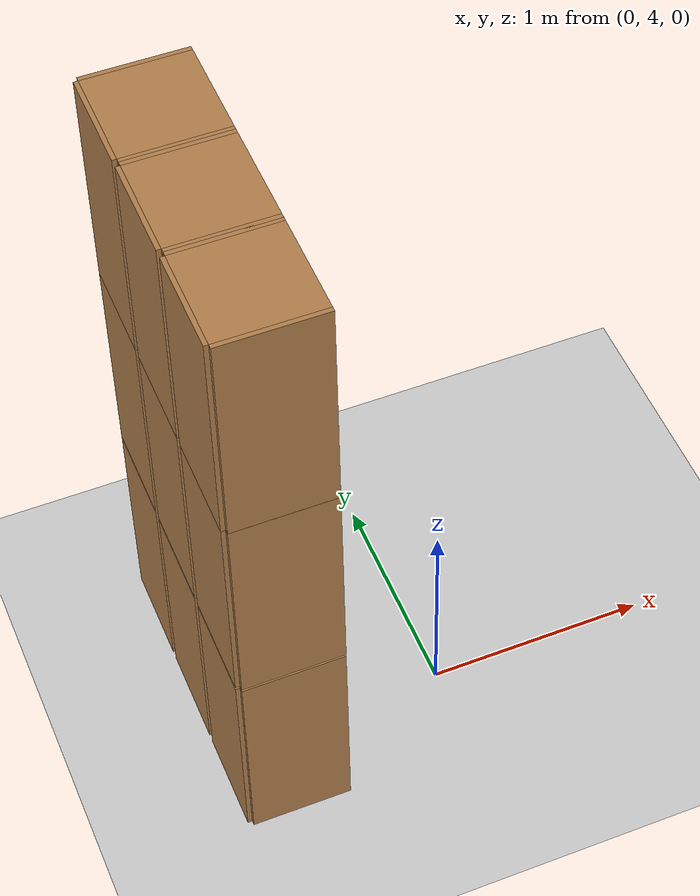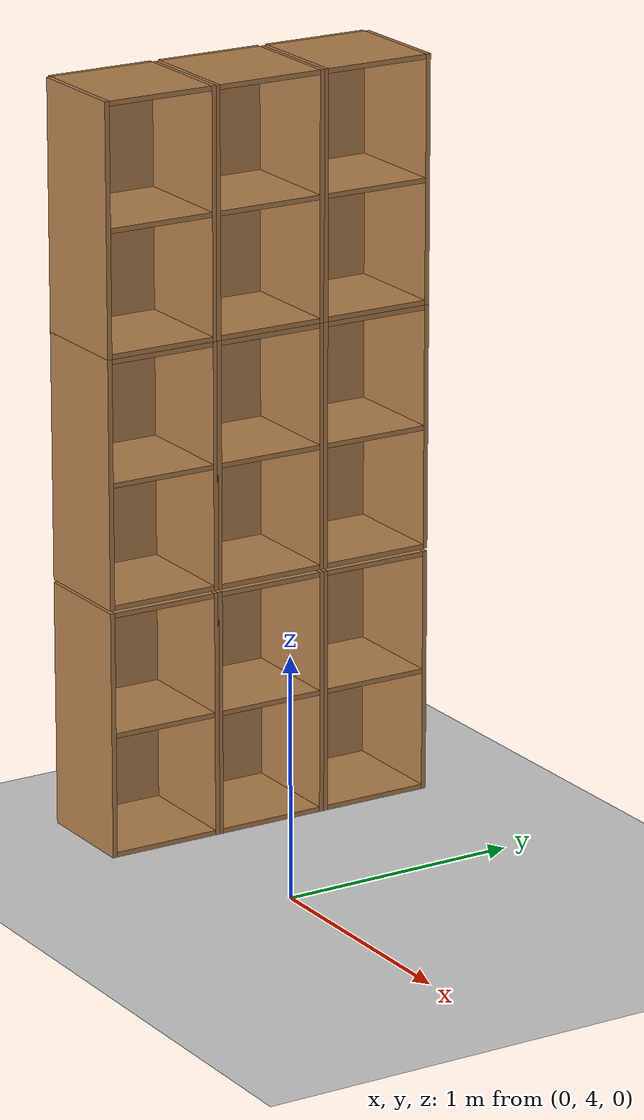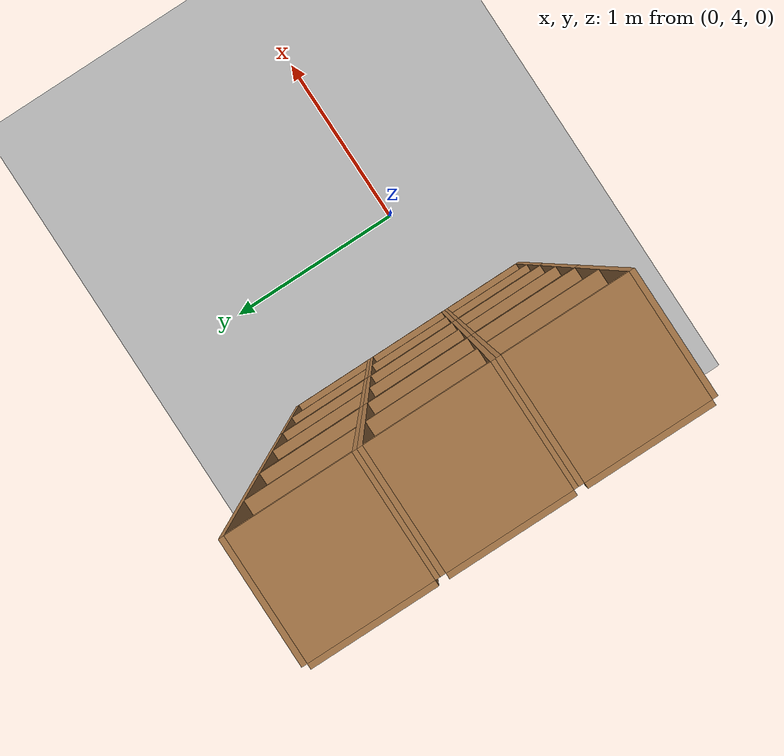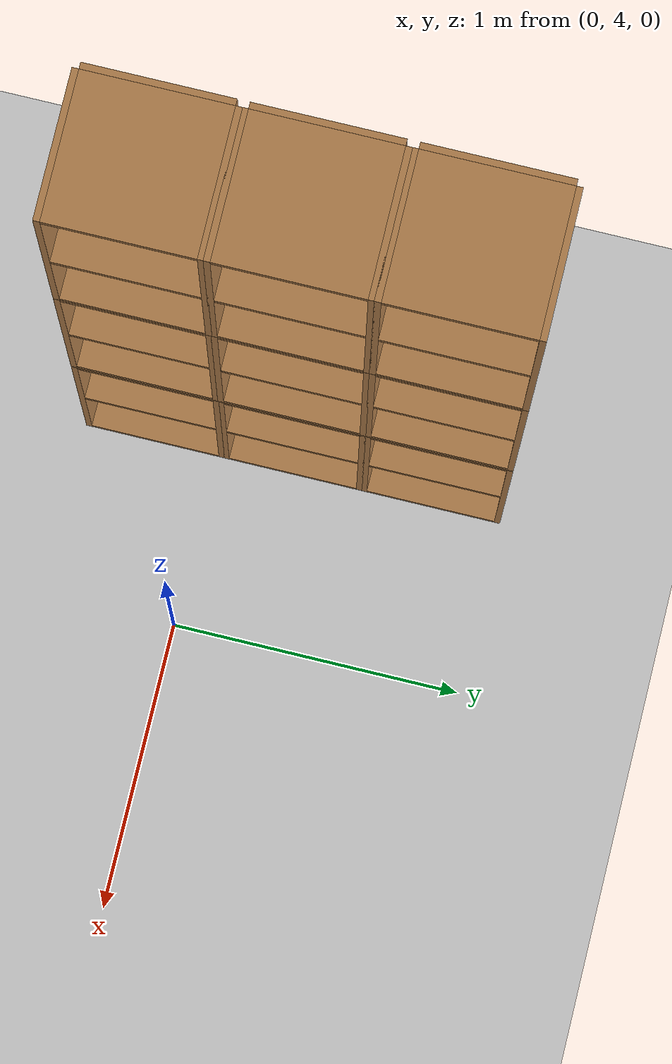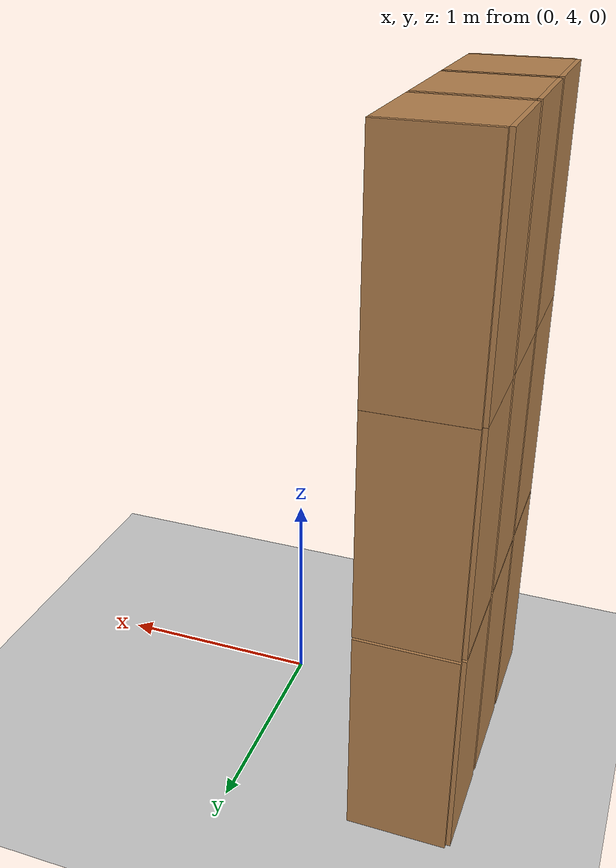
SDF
<sdf version="1.6">
 <world name="default">
  <model name="ground_plane">
   <static>1</static>
   <link name="link">
    <collision name="collision">
     <geometry><plane><normal>0 0 1</normal><size>100 100</size></plane></geometry>
     <surface>
      <contact><collide_bitmask>65535</collide_bitmask></contact>
      <friction><ode><mu>100</mu><mu2>50</mu2></ode></friction>
     </surface>
    </collision>
    <visual name="visual">
     <cast_shadows>0</cast_shadows>
     <geometry><plane><normal>0 0 1</normal><size>100 100</size></plane></geometry>
     <material>
      <script><uri>file://media/materials/scripts/gazebo.material</uri><name>Gazebo/Grey</name></script>
     </material>
    </visual>
   </link>
  </model>
  <model name="Locker18_clone_4_clone_2_clone_1_clone_clone_clone_2_clone_clone_0">
   <model name="Locker18">
    <model name="Locker3">
     <model name="cabinet">
      <static>1</static>
      <link name="cabinet_bottom_plate">
       <inertial>
        <pose>0 0 -1 0 -0 0</pose>
        <inertia><ixx>2.05</ixx><ixy>0</ixy><ixz>0</ixz><iyy>2.05</iyy><iyz>0</iyz><izz>2.05</izz></inertia>
        <mass>25</mass>
       </inertial>
       <collision name="cabinet_bottom_plate_geom">
        <pose>0 0 0.01 0 -0 0</pose>
        <geometry><box><size>0.45 0.45 0.02</size></box></geometry>
       </collision>
       <visual name="cabinet_bottom_plate_geom_visual">
        <pose>0 0 0.01 0 -0 0</pose>
        <geometry><box><size>0.45 0.45 0.02</size></box></geometry>
        <material>
         <script><uri>file://media/materials/scripts/gazebo.material</uri><name>Gazebo/Wood</name></script>
        </material>
       </visual>
       <collision name="cabinet_bottom_plate_geom_cabinet_back_plate">
        <pose>0.235 0 0.51 0 -0 0</pose>
        <geometry><box><size>0.02 0.45 1.02</size></box></geometry>
       </collision>
       <visual name="cabinet_bottom_plate_geom_cabinet_back_plate_visual">
        <pose>0.235 0 0.51 0 -0 0</pose>
        <geometry><box><size>0.02 0.45 1.02</size></box></geometry>
        <material>
         <script><uri>file://media/materials/scripts/gazebo.material</uri><name>Gazebo/Wood</name></script>
        </material>
       </visual>
       <collision name="cabinet_bottom_plate_geom_cabinet_left_plate">
        <pose>0 0.235 0.51 0 -0 0</pose>
        <geometry><box><size>0.45 0.02 1.02</size></box></geometry>
       </collision>
       <visual name="cabinet_bottom_plate_geom_cabinet_left_plate_visual">
        <pose>0 0.235 0.51 0 -0 0</pose>
        <geometry><box><size>0.45 0.02 1.02</size></box></geometry>
        <material>
         <script><uri>file://media/materials/scripts/gazebo.material</uri><name>Gazebo/Wood</name></script>
        </material>
       </visual>
       <collision name="cabinet_bottom_plate_geom_cabinet_middle_plate">
        <pose>0 0 0.51 0 -0 0</pose>
        <geometry><box><size>0.45 0.45 0.02</size></box></geometry>
       </collision>
       <visual name="cabinet_bottom_plate_geom_cabinet_middle_plate_visual">
        <pose>0 0 0.51 0 -0 0</pose>
        <geometry><box><size>0.45 0.45 0.02</size></box></geometry>
        <material>
         <script><uri>file://media/materials/scripts/gazebo.material</uri><name>Gazebo/Wood</name></script>
        </material>
       </visual>
       <collision name="cabinet_bottom_plate_geom_cabinet_right_plate">
        <pose>0 -0.235 0.51 0 -0 0</pose>
        <geometry><box><size>0.45 0.02 1.02</size></box></geometry>
       </collision>
       <visual name="cabinet_bottom_plate_geom_cabinet_right_plate_visual">
        <pose>0 -0.235 0.51 0 -0 0</pose>
        <geometry><box><size>0.45 0.02 1.02</size></box></geometry>
        <material>
         <script><uri>file://media/materials/scripts/gazebo.material</uri><name>Gazebo/Wood</name></script>
        </material>
       </visual>
       <collision name="cabinet_bottom_plate_geom_cabinet_top_plate">
        <pose>0 0 1.01 0 -0 0</pose>
        <geometry><box><size>0.45 0.45 0.02</size></box></geometry>
       </collision>
       <visual name="cabinet_bottom_plate_geom_cabinet_top_plate_visual">
        <pose>0 0 1.01 0 -0 0</pose>
        <geometry><box><size>0.45 0.45 0.02</size></box></geometry>
        <material>
         <script><uri>file://media/materials/scripts/gazebo.material</uri><name>Gazebo/Wood</name></script>
        </material>
       </visual>
      </link>
      <pose>-0.676968 1.45758 0 0 -0 0</pose>
     </model>
     <model name="cabinet_clone">
      <static>1</static>
      <link name="cabinet_bottom_plate">
       <inertial>
        <pose>0 0 -1 0 -0 0</pose>
        <inertia><ixx>2.05</ixx><ixy>0</ixy><ixz>0</ixz><iyy>2.05</iyy><iyz>0</iyz><izz>2.05</izz></inertia>
        <mass>25</mass>
       </inertial>
       <collision name="cabinet_bottom_plate_geom">
        <pose>0 0 0.01 0 -0 0</pose>
        <geometry><box><size>0.45 0.45 0.02</size></box></geometry>
       </collision>
       <visual name="cabinet_bottom_plate_geom_visual">
        <pose>0 0 0.01 0 -0 0</pose>
        <geometry><box><size>0.45 0.45 0.02</size></box></geometry>
        <material>
         <script><uri>file://media/materials/scripts/gazebo.material</uri><name>Gazebo/Wood</name></script>
        </material>
       </visual>
       <collision name="cabinet_bottom_plate_geom_cabinet_back_plate">
        <pose>0.235 0 0.51 0 -0 0</pose>
        <geometry><box><size>0.02 0.45 1.02</size></box></geometry>
       </collision>
       <visual name="cabinet_bottom_plate_geom_cabinet_back_plate_visual">
        <pose>0.235 0 0.51 0 -0 0</pose>
        <geometry><box><size>0.02 0.45 1.02</size></box></geometry>
        <material>
         <script><uri>file://media/materials/scripts/gazebo.material</uri><name>Gazebo/Wood</name></script>
        </material>
       </visual>
       <collision name="cabinet_bottom_plate_geom_cabinet_left_plate">
        <pose>0 0.235 0.51 0 -0 0</pose>
        <geometry><box><size>0.45 0.02 1.02</size></box></geometry>
       </collision>
       <visual name="cabinet_bottom_plate_geom_cabinet_left_plate_visual">
        <pose>0 0.235 0.51 0 -0 0</pose>
        <geometry><box><size>0.45 0.02 1.02</size></box></geometry>
        <material>
         <script><uri>file://media/materials/scripts/gazebo.material</uri><name>Gazebo/Wood</name></script>
        </material>
       </visual>
       <collision name="cabinet_bottom_plate_geom_cabinet_middle_plate">
        <pose>0 0 0.51 0 -0 0</pose>
        <geometry><box><size>0.45 0.45 0.02</size></box></geometry>
       </collision>
       <visual name="cabinet_bottom_plate_geom_cabinet_middle_plate_visual">
        <pose>0 0 0.51 0 -0 0</pose>
        <geometry><box><size>0.45 0.45 0.02</size></box></geometry>
        <material>
         <script><uri>file://media/materials/scripts/gazebo.material</uri><name>Gazebo/Wood</name></script>
        </material>
       </visual>
       <collision name="cabinet_bottom_plate_geom_cabinet_right_plate">
        <pose>0 -0.235 0.51 0 -0 0</pose>
        <geometry><box><size>0.45 0.02 1.02</size></box></geometry>
       </collision>
       <visual name="cabinet_bottom_plate_geom_cabinet_right_plate_visual">
        <pose>0 -0.235 0.51 0 -0 0</pose>
        <geometry><box><size>0.45 0.02 1.02</size></box></geometry>
        <material>
         <script><uri>file://media/materials/scripts/gazebo.material</uri><name>Gazebo/Wood</name></script>
        </material>
       </visual>
       <collision name="cabinet_bottom_plate_geom_cabinet_top_plate">
        <pose>0 0 1.01 0 -0 0</pose>
        <geometry><box><size>0.45 0.45 0.02</size></box></geometry>
       </collision>
       <visual name="cabinet_bottom_plate_geom_cabinet_top_plate_visual">
        <pose>0 0 1.01 0 -0 0</pose>
        <geometry><box><size>0.45 0.45 0.02</size></box></geometry>
        <material>
         <script><uri>file://media/materials/scripts/gazebo.material</uri><name>Gazebo/Wood</name></script>
        </material>
       </visual>
      </link>
      <pose>-0.676968 0.970971 0 0 -0 0</pose>
     </model>
     <model name="cabinet_clone_0">
      <static>1</static>
      <link name="cabinet_bottom_plate">
       <inertial>
        <pose>0 0 -1 0 -0 0</pose>
        <inertia><ixx>2.05</ixx><ixy>0</ixy><ixz>0</ixz><iyy>2.05</iyy><iyz>0</iyz><izz>2.05</izz></inertia>
        <mass>25</mass>
       </inertial>
       <collision name="cabinet_bottom_plate_geom">
        <pose>0 0 0.01 0 -0 0</pose>
        <geometry><box><size>0.45 0.45 0.02</size></box></geometry>
       </collision>
       <visual name="cabinet_bottom_plate_geom_visual">
        <pose>0 0 0.01 0 -0 0</pose>
        <geometry><box><size>0.45 0.45 0.02</size></box></geometry>
        <material>
         <script><uri>file://media/materials/scripts/gazebo.material</uri><name>Gazebo/Wood</name></script>
        </material>
       </visual>
       <collision name="cabinet_bottom_plate_geom_cabinet_back_plate">
        <pose>0.235 0 0.51 0 -0 0</pose>
        <geometry><box><size>0.02 0.45 1.02</size></box></geometry>
       </collision>
       <visual name="cabinet_bottom_plate_geom_cabinet_back_plate_visual">
        <pose>0.235 0 0.51 0 -0 0</pose>
        <geometry><box><size>0.02 0.45 1.02</size></box></geometry>
        <material>
         <script><uri>file://media/materials/scripts/gazebo.material</uri><name>Gazebo/Wood</name></script>
        </material>
       </visual>
       <collision name="cabinet_bottom_plate_geom_cabinet_left_plate">
        <pose>0 0.235 0.51 0 -0 0</pose>
        <geometry><box><size>0.45 0.02 1.02</size></box></geometry>
       </collision>
       <visual name="cabinet_bottom_plate_geom_cabinet_left_plate_visual">
        <pose>0 0.235 0.51 0 -0 0</pose>
        <geometry><box><size>0.45 0.02 1.02</size></box></geometry>
        <material>
         <script><uri>file://media/materials/scripts/gazebo.material</uri><name>Gazebo/Wood</name></script>
        </material>
       </visual>
       <collision name="cabinet_bottom_plate_geom_cabinet_middle_plate">
        <pose>0 0 0.51 0 -0 0</pose>
        <geometry><box><size>0.45 0.45 0.02</size></box></geometry>
       </collision>
       <visual name="cabinet_bottom_plate_geom_cabinet_middle_plate_visual">
        <pose>0 0 0.51 0 -0 0</pose>
        <geometry><box><size>0.45 0.45 0.02</size></box></geometry>
        <material>
         <script><uri>file://media/materials/scripts/gazebo.material</uri><name>Gazebo/Wood</name></script>
        </material>
       </visual>
       <collision name="cabinet_bottom_plate_geom_cabinet_right_plate">
        <pose>0 -0.235 0.51 0 -0 0</pose>
        <geometry><box><size>0.45 0.02 1.02</size></box></geometry>
       </collision>
       <visual name="cabinet_bottom_plate_geom_cabinet_right_plate_visual">
        <pose>0 -0.235 0.51 0 -0 0</pose>
        <geometry><box><size>0.45 0.02 1.02</size></box></geometry>
        <material>
         <script><uri>file://media/materials/scripts/gazebo.material</uri><name>Gazebo/Wood</name></script>
        </material>
       </visual>
       <collision name="cabinet_bottom_plate_geom_cabinet_top_plate">
        <pose>0 0 1.01 0 -0 0</pose>
        <geometry><box><size>0.45 0.45 0.02</size></box></geometry>
       </collision>
       <visual name="cabinet_bottom_plate_geom_cabinet_top_plate_visual">
        <pose>0 0 1.01 0 -0 0</pose>
        <geometry><box><size>0.45 0.45 0.02</size></box></geometry>
        <material>
         <script><uri>file://media/materials/scripts/gazebo.material</uri><name>Gazebo/Wood</name></script>
        </material>
       </visual>
      </link>
      <pose>-0.676968 0.48391 0 0 -0 0</pose>
     </model>
     <static>0</static>
     <pose>0 3e-06 -1.02763 0 -0 0</pose>
    </model>
    <model name="Locker3_clone">
     <model name="cabinet">
      <static>1</static>
      <link name="cabinet_bottom_plate">
       <inertial>
        <pose>0 0 -1 0 -0 0</pose>
        <inertia><ixx>2.05</ixx><ixy>0</ixy><ixz>0</ixz><iyy>2.05</iyy><iyz>0</iyz><izz>2.05</izz></inertia>
        <mass>25</mass>
       </inertial>
       <collision name="cabinet_bottom_plate_geom">
        <pose>0 0 0.01 0 -0 0</pose>
        <geometry><box><size>0.45 0.45 0.02</size></box></geometry>
       </collision>
       <visual name="cabinet_bottom_plate_geom_visual">
        <pose>0 0 0.01 0 -0 0</pose>
        <geometry><box><size>0.45 0.45 0.02</size></box></geometry>
        <material>
         <script><uri>file://media/materials/scripts/gazebo.material</uri><name>Gazebo/Wood</name></script>
        </material>
       </visual>
       <collision name="cabinet_bottom_plate_geom_cabinet_back_plate">
        <pose>0.235 0 0.51 0 -0 0</pose>
        <geometry><box><size>0.02 0.45 1.02</size></box></geometry>
       </collision>
       <visual name="cabinet_bottom_plate_geom_cabinet_back_plate_visual">
        <pose>0.235 0 0.51 0 -0 0</pose>
        <geometry><box><size>0.02 0.45 1.02</size></box></geometry>
        <material>
         <script><uri>file://media/materials/scripts/gazebo.material</uri><name>Gazebo/Wood</name></script>
        </material>
       </visual>
       <collision name="cabinet_bottom_plate_geom_cabinet_left_plate">
        <pose>0 0.235 0.51 0 -0 0</pose>
        <geometry><box><size>0.45 0.02 1.02</size></box></geometry>
       </collision>
       <visual name="cabinet_bottom_plate_geom_cabinet_left_plate_visual">
        <pose>0 0.235 0.51 0 -0 0</pose>
        <geometry><box><size>0.45 0.02 1.02</size></box></geometry>
        <material>
         <script><uri>file://media/materials/scripts/gazebo.material</uri><name>Gazebo/Wood</name></script>
        </material>
       </visual>
       <collision name="cabinet_bottom_plate_geom_cabinet_middle_plate">
        <pose>0 0 0.51 0 -0 0</pose>
        <geometry><box><size>0.45 0.45 0.02</size></box></geometry>
       </collision>
       <visual name="cabinet_bottom_plate_geom_cabinet_middle_plate_visual">
        <pose>0 0 0.51 0 -0 0</pose>
        <geometry><box><size>0.45 0.45 0.02</size></box></geometry>
        <material>
         <script><uri>file://media/materials/scripts/gazebo.material</uri><name>Gazebo/Wood</name></script>
        </material>
       </visual>
       <collision name="cabinet_bottom_plate_geom_cabinet_right_plate">
        <pose>0 -0.235 0.51 0 -0 0</pose>
        <geometry><box><size>0.45 0.02 1.02</size></box></geometry>
       </collision>
       <visual name="cabinet_bottom_plate_geom_cabinet_right_plate_visual">
        <pose>0 -0.235 0.51 0 -0 0</pose>
        <geometry><box><size>0.45 0.02 1.02</size></box></geometry>
        <material>
         <script><uri>file://media/materials/scripts/gazebo.material</uri><name>Gazebo/Wood</name></script>
        </material>
       </visual>
       <collision name="cabinet_bottom_plate_geom_cabinet_top_plate">
        <pose>0 0 1.01 0 -0 0</pose>
        <geometry><box><size>0.45 0.45 0.02</size></box></geometry>
       </collision>
       <visual name="cabinet_bottom_plate_geom_cabinet_top_plate_visual">
        <pose>0 0 1.01 0 -0 0</pose>
        <geometry><box><size>0.45 0.45 0.02</size></box></geometry>
        <material>
         <script><uri>file://media/materials/scripts/gazebo.material</uri><name>Gazebo/Wood</name></script>
        </material>
       </visual>
      </link>
      <pose>-0.676968 1.45758 0 0 -0 0</pose>
     </model>
     <model name="cabinet_clone">
      <static>1</static>
      <link name="cabinet_bottom_plate">
       <inertial>
        <pose>0 0 -1 0 -0 0</pose>
        <inertia><ixx>2.05</ixx><ixy>0</ixy><ixz>0</ixz><iyy>2.05</iyy><iyz>0</iyz><izz>2.05</izz></inertia>
        <mass>25</mass>
       </inertial>
       <collision name="cabinet_bottom_plate_geom">
        <pose>0 0 0.01 0 -0 0</pose>
        <geometry><box><size>0.45 0.45 0.02</size></box></geometry>
       </collision>
       <visual name="cabinet_bottom_plate_geom_visual">
        <pose>0 0 0.01 0 -0 0</pose>
        <geometry><box><size>0.45 0.45 0.02</size></box></geometry>
        <material>
         <script><uri>file://media/materials/scripts/gazebo.material</uri><name>Gazebo/Wood</name></script>
        </material>
       </visual>
       <collision name="cabinet_bottom_plate_geom_cabinet_back_plate">
        <pose>0.235 0 0.51 0 -0 0</pose>
        <geometry><box><size>0.02 0.45 1.02</size></box></geometry>
       </collision>
       <visual name="cabinet_bottom_plate_geom_cabinet_back_plate_visual">
        <pose>0.235 0 0.51 0 -0 0</pose>
        <geometry><box><size>0.02 0.45 1.02</size></box></geometry>
        <material>
         <script><uri>file://media/materials/scripts/gazebo.material</uri><name>Gazebo/Wood</name></script>
        </material>
       </visual>
       <collision name="cabinet_bottom_plate_geom_cabinet_left_plate">
        <pose>0 0.235 0.51 0 -0 0</pose>
        <geometry><box><size>0.45 0.02 1.02</size></box></geometry>
       </collision>
       <visual name="cabinet_bottom_plate_geom_cabinet_left_plate_visual">
        <pose>0 0.235 0.51 0 -0 0</pose>
        <geometry><box><size>0.45 0.02 1.02</size></box></geometry>
        <material>
         <script><uri>file://media/materials/scripts/gazebo.material</uri><name>Gazebo/Wood</name></script>
        </material>
       </visual>
       <collision name="cabinet_bottom_plate_geom_cabinet_middle_plate">
        <pose>0 0 0.51 0 -0 0</pose>
        <geometry><box><size>0.45 0.45 0.02</size></box></geometry>
       </collision>
       <visual name="cabinet_bottom_plate_geom_cabinet_middle_plate_visual">
        <pose>0 0 0.51 0 -0 0</pose>
        <geometry><box><size>0.45 0.45 0.02</size></box></geometry>
        <material>
         <script><uri>file://media/materials/scripts/gazebo.material</uri><name>Gazebo/Wood</name></script>
        </material>
       </visual>
       <collision name="cabinet_bottom_plate_geom_cabinet_right_plate">
        <pose>0 -0.235 0.51 0 -0 0</pose>
        <geometry><box><size>0.45 0.02 1.02</size></box></geometry>
       </collision>
       <visual name="cabinet_bottom_plate_geom_cabinet_right_plate_visual">
        <pose>0 -0.235 0.51 0 -0 0</pose>
        <geometry><box><size>0.45 0.02 1.02</size></box></geometry>
        <material>
         <script><uri>file://media/materials/scripts/gazebo.material</uri><name>Gazebo/Wood</name></script>
        </material>
       </visual>
       <collision name="cabinet_bottom_plate_geom_cabinet_top_plate">
        <pose>0 0 1.01 0 -0 0</pose>
        <geometry><box><size>0.45 0.45 0.02</size></box></geometry>
       </collision>
       <visual name="cabinet_bottom_plate_geom_cabinet_top_plate_visual">
        <pose>0 0 1.01 0 -0 0</pose>
        <geometry><box><size>0.45 0.45 0.02</size></box></geometry>
        <material>
         <script><uri>file://media/materials/scripts/gazebo.material</uri><name>Gazebo/Wood</name></script>
        </material>
       </visual>
      </link>
      <pose>-0.676968 0.970971 0 0 -0 0</pose>
     </model>
     <model name="cabinet_clone_0">
      <static>1</static>
      <link name="cabinet_bottom_plate">
       <inertial>
        <pose>0 0 -1 0 -0 0</pose>
        <inertia><ixx>2.05</ixx><ixy>0</ixy><ixz>0</ixz><iyy>2.05</iyy><iyz>0</iyz><izz>2.05</izz></inertia>
        <mass>25</mass>
       </inertial>
       <collision name="cabinet_bottom_plate_geom">
        <pose>0 0 0.01 0 -0 0</pose>
        <geometry><box><size>0.45 0.45 0.02</size></box></geometry>
       </collision>
       <visual name="cabinet_bottom_plate_geom_visual">
        <pose>0 0 0.01 0 -0 0</pose>
        <geometry><box><size>0.45 0.45 0.02</size></box></geometry>
        <material>
         <script><uri>file://media/materials/scripts/gazebo.material</uri><name>Gazebo/Wood</name></script>
        </material>
       </visual>
       <collision name="cabinet_bottom_plate_geom_cabinet_back_plate">
        <pose>0.235 0 0.51 0 -0 0</pose>
        <geometry><box><size>0.02 0.45 1.02</size></box></geometry>
       </collision>
       <visual name="cabinet_bottom_plate_geom_cabinet_back_plate_visual">
        <pose>0.235 0 0.51 0 -0 0</pose>
        <geometry><box><size>0.02 0.45 1.02</size></box></geometry>
        <material>
         <script><uri>file://media/materials/scripts/gazebo.material</uri><name>Gazebo/Wood</name></script>
        </material>
       </visual>
       <collision name="cabinet_bottom_plate_geom_cabinet_left_plate">
        <pose>0 0.235 0.51 0 -0 0</pose>
        <geometry><box><size>0.45 0.02 1.02</size></box></geometry>
       </collision>
       <visual name="cabinet_bottom_plate_geom_cabinet_left_plate_visual">
        <pose>0 0.235 0.51 0 -0 0</pose>
        <geometry><box><size>0.45 0.02 1.02</size></box></geometry>
        <material>
         <script><uri>file://media/materials/scripts/gazebo.material</uri><name>Gazebo/Wood</name></script>
        </material>
       </visual>
       <collision name="cabinet_bottom_plate_geom_cabinet_middle_plate">
        <pose>0 0 0.51 0 -0 0</pose>
        <geometry><box><size>0.45 0.45 0.02</size></box></geometry>
       </collision>
       <visual name="cabinet_bottom_plate_geom_cabinet_middle_plate_visual">
        <pose>0 0 0.51 0 -0 0</pose>
        <geometry><box><size>0.45 0.45 0.02</size></box></geometry>
        <material>
         <script><uri>file://media/materials/scripts/gazebo.material</uri><name>Gazebo/Wood</name></script>
        </material>
       </visual>
       <collision name="cabinet_bottom_plate_geom_cabinet_right_plate">
        <pose>0 -0.235 0.51 0 -0 0</pose>
        <geometry><box><size>0.45 0.02 1.02</size></box></geometry>
       </collision>
       <visual name="cabinet_bottom_plate_geom_cabinet_right_plate_visual">
        <pose>0 -0.235 0.51 0 -0 0</pose>
        <geometry><box><size>0.45 0.02 1.02</size></box></geometry>
        <material>
         <script><uri>file://media/materials/scripts/gazebo.material</uri><name>Gazebo/Wood</name></script>
        </material>
       </visual>
       <collision name="cabinet_bottom_plate_geom_cabinet_top_plate">
        <pose>0 0 1.01 0 -0 0</pose>
        <geometry><box><size>0.45 0.45 0.02</size></box></geometry>
       </collision>
       <visual name="cabinet_bottom_plate_geom_cabinet_top_plate_visual">
        <pose>0 0 1.01 0 -0 0</pose>
        <geometry><box><size>0.45 0.45 0.02</size></box></geometry>
        <material>
         <script><uri>file://media/materials/scripts/gazebo.material</uri><name>Gazebo/Wood</name></script>
        </material>
       </visual>
      </link>
      <pose>-0.676968 0.48391 0 0 -0 0</pose>
     </model>
     <static>0</static>
     <pose>0 3e-06 0.003717 0 -0 0</pose>
    </model>
    <model name="Locker3_clone_clone">
     <model name="cabinet">
      <static>1</static>
      <link name="cabinet_bottom_plate">
       <inertial>
        <pose>0 0 -1 0 -0 0</pose>
        <inertia><ixx>2.05</ixx><ixy>0</ixy><ixz>0</ixz><iyy>2.05</iyy><iyz>0</iyz><izz>2.05</izz></inertia>
        <mass>25</mass>
       </inertial>
       <collision name="cabinet_bottom_plate_geom">
        <pose>0 0 0.01 0 -0 0</pose>
        <geometry><box><size>0.45 0.45 0.02</size></box></geometry>
       </collision>
       <visual name="cabinet_bottom_plate_geom_visual">
        <pose>0 0 0.01 0 -0 0</pose>
        <geometry><box><size>0.45 0.45 0.02</size></box></geometry>
        <material>
         <script><uri>file://media/materials/scripts/gazebo.material</uri><name>Gazebo/Wood</name></script>
        </material>
       </visual>
       <collision name="cabinet_bottom_plate_geom_cabinet_back_plate">
        <pose>0.235 0 0.51 0 -0 0</pose>
        <geometry><box><size>0.02 0.45 1.02</size></box></geometry>
       </collision>
       <visual name="cabinet_bottom_plate_geom_cabinet_back_plate_visual">
        <pose>0.235 0 0.51 0 -0 0</pose>
        <geometry><box><size>0.02 0.45 1.02</size></box></geometry>
        <material>
         <script><uri>file://media/materials/scripts/gazebo.material</uri><name>Gazebo/Wood</name></script>
        </material>
       </visual>
       <collision name="cabinet_bottom_plate_geom_cabinet_left_plate">
        <pose>0 0.235 0.51 0 -0 0</pose>
        <geometry><box><size>0.45 0.02 1.02</size></box></geometry>
       </collision>
       <visual name="cabinet_bottom_plate_geom_cabinet_left_plate_visual">
        <pose>0 0.235 0.51 0 -0 0</pose>
        <geometry><box><size>0.45 0.02 1.02</size></box></geometry>
        <material>
         <script><uri>file://media/materials/scripts/gazebo.material</uri><name>Gazebo/Wood</name></script>
        </material>
       </visual>
       <collision name="cabinet_bottom_plate_geom_cabinet_middle_plate">
        <pose>0 0 0.51 0 -0 0</pose>
        <geometry><box><size>0.45 0.45 0.02</size></box></geometry>
       </collision>
       <visual name="cabinet_bottom_plate_geom_cabinet_middle_plate_visual">
        <pose>0 0 0.51 0 -0 0</pose>
        <geometry><box><size>0.45 0.45 0.02</size></box></geometry>
        <material>
         <script><uri>file://media/materials/scripts/gazebo.material</uri><name>Gazebo/Wood</name></script>
        </material>
       </visual>
       <collision name="cabinet_bottom_plate_geom_cabinet_right_plate">
        <pose>0 -0.235 0.51 0 -0 0</pose>
        <geometry><box><size>0.45 0.02 1.02</size></box></geometry>
       </collision>
       <visual name="cabinet_bottom_plate_geom_cabinet_right_plate_visual">
        <pose>0 -0.235 0.51 0 -0 0</pose>
        <geometry><box><size>0.45 0.02 1.02</size></box></geometry>
        <material>
         <script><uri>file://media/materials/scripts/gazebo.material</uri><name>Gazebo/Wood</name></script>
        </material>
       </visual>
       <collision name="cabinet_bottom_plate_geom_cabinet_top_plate">
        <pose>0 0 1.01 0 -0 0</pose>
        <geometry><box><size>0.45 0.45 0.02</size></box></geometry>
       </collision>
       <visual name="cabinet_bottom_plate_geom_cabinet_top_plate_visual">
        <pose>0 0 1.01 0 -0 0</pose>
        <geometry><box><size>0.45 0.45 0.02</size></box></geometry>
        <material>
         <script><uri>file://media/materials/scripts/gazebo.material</uri><name>Gazebo/Wood</name></script>
        </material>
       </visual>
      </link>
      <pose>-0.676968 1.45758 0 0 -0 0</pose>
     </model>
     <model name="cabinet_clone">
      <static>1</static>
      <link name="cabinet_bottom_plate">
       <inertial>
        <pose>0 0 -1 0 -0 0</pose>
        <inertia><ixx>2.05</ixx><ixy>0</ixy><ixz>0</ixz><iyy>2.05</iyy><iyz>0</iyz><izz>2.05</izz></inertia>
        <mass>25</mass>
       </inertial>
       <collision name="cabinet_bottom_plate_geom">
        <pose>0 0 0.01 0 -0 0</pose>
        <geometry><box><size>0.45 0.45 0.02</size></box></geometry>
       </collision>
       <visual name="cabinet_bottom_plate_geom_visual">
        <pose>0 0 0.01 0 -0 0</pose>
        <geometry><box><size>0.45 0.45 0.02</size></box></geometry>
        <material>
         <script><uri>file://media/materials/scripts/gazebo.material</uri><name>Gazebo/Wood</name></script>
        </material>
       </visual>
       <collision name="cabinet_bottom_plate_geom_cabinet_back_plate">
        <pose>0.235 0 0.51 0 -0 0</pose>
        <geometry><box><size>0.02 0.45 1.02</size></box></geometry>
       </collision>
       <visual name="cabinet_bottom_plate_geom_cabinet_back_plate_visual">
        <pose>0.235 0 0.51 0 -0 0</pose>
        <geometry><box><size>0.02 0.45 1.02</size></box></geometry>
        <material>
         <script><uri>file://media/materials/scripts/gazebo.material</uri><name>Gazebo/Wood</name></script>
        </material>
       </visual>
       <collision name="cabinet_bottom_plate_geom_cabinet_left_plate">
        <pose>0 0.235 0.51 0 -0 0</pose>
        <geometry><box><size>0.45 0.02 1.02</size></box></geometry>
       </collision>
       <visual name="cabinet_bottom_plate_geom_cabinet_left_plate_visual">
        <pose>0 0.235 0.51 0 -0 0</pose>
        <geometry><box><size>0.45 0.02 1.02</size></box></geometry>
        <material>
         <script><uri>file://media/materials/scripts/gazebo.material</uri><name>Gazebo/Wood</name></script>
        </material>
       </visual>
       <collision name="cabinet_bottom_plate_geom_cabinet_middle_plate">
        <pose>0 0 0.51 0 -0 0</pose>
        <geometry><box><size>0.45 0.45 0.02</size></box></geometry>
       </collision>
       <visual name="cabinet_bottom_plate_geom_cabinet_middle_plate_visual">
        <pose>0 0 0.51 0 -0 0</pose>
        <geometry><box><size>0.45 0.45 0.02</size></box></geometry>
        <material>
         <script><uri>file://media/materials/scripts/gazebo.material</uri><name>Gazebo/Wood</name></script>
        </material>
       </visual>
       <collision name="cabinet_bottom_plate_geom_cabinet_right_plate">
        <pose>0 -0.235 0.51 0 -0 0</pose>
        <geometry><box><size>0.45 0.02 1.02</size></box></geometry>
       </collision>
       <visual name="cabinet_bottom_plate_geom_cabinet_right_plate_visual">
        <pose>0 -0.235 0.51 0 -0 0</pose>
        <geometry><box><size>0.45 0.02 1.02</size></box></geometry>
        <material>
         <script><uri>file://media/materials/scripts/gazebo.material</uri><name>Gazebo/Wood</name></script>
        </material>
       </visual>
       <collision name="cabinet_bottom_plate_geom_cabinet_top_plate">
        <pose>0 0 1.01 0 -0 0</pose>
        <geometry><box><size>0.45 0.45 0.02</size></box></geometry>
       </collision>
       <visual name="cabinet_bottom_plate_geom_cabinet_top_plate_visual">
        <pose>0 0 1.01 0 -0 0</pose>
        <geometry><box><size>0.45 0.45 0.02</size></box></geometry>
        <material>
         <script><uri>file://media/materials/scripts/gazebo.material</uri><name>Gazebo/Wood</name></script>
        </material>
       </visual>
      </link>
      <pose>-0.676968 0.970971 0 0 -0 0</pose>
     </model>
     <model name="cabinet_clone_0">
      <static>1</static>
      <link name="cabinet_bottom_plate">
       <inertial>
        <pose>0 0 -1 0 -0 0</pose>
        <inertia><ixx>2.05</ixx><ixy>0</ixy><ixz>0</ixz><iyy>2.05</iyy><iyz>0</iyz><izz>2.05</izz></inertia>
        <mass>25</mass>
       </inertial>
       <collision name="cabinet_bottom_plate_geom">
        <pose>0 0 0.01 0 -0 0</pose>
        <geometry><box><size>0.45 0.45 0.02</size></box></geometry>
       </collision>
       <visual name="cabinet_bottom_plate_geom_visual">
        <pose>0 0 0.01 0 -0 0</pose>
        <geometry><box><size>0.45 0.45 0.02</size></box></geometry>
        <material>
         <script><uri>file://media/materials/scripts/gazebo.material</uri><name>Gazebo/Wood</name></script>
        </material>
       </visual>
       <collision name="cabinet_bottom_plate_geom_cabinet_back_plate">
        <pose>0.235 0 0.51 0 -0 0</pose>
        <geometry><box><size>0.02 0.45 1.02</size></box></geometry>
       </collision>
       <visual name="cabinet_bottom_plate_geom_cabinet_back_plate_visual">
        <pose>0.235 0 0.51 0 -0 0</pose>
        <geometry><box><size>0.02 0.45 1.02</size></box></geometry>
        <material>
         <script><uri>file://media/materials/scripts/gazebo.material</uri><name>Gazebo/Wood</name></script>
        </material>
       </visual>
       <collision name="cabinet_bottom_plate_geom_cabinet_left_plate">
        <pose>0 0.235 0.51 0 -0 0</pose>
        <geometry><box><size>0.45 0.02 1.02</size></box></geometry>
       </collision>
       <visual name="cabinet_bottom_plate_geom_cabinet_left_plate_visual">
        <pose>0 0.235 0.51 0 -0 0</pose>
        <geometry><box><size>0.45 0.02 1.02</size></box></geometry>
        <material>
         <script><uri>file://media/materials/scripts/gazebo.material</uri><name>Gazebo/Wood</name></script>
        </material>
       </visual>
       <collision name="cabinet_bottom_plate_geom_cabinet_middle_plate">
        <pose>0 0 0.51 0 -0 0</pose>
        <geometry><box><size>0.45 0.45 0.02</size></box></geometry>
       </collision>
       <visual name="cabinet_bottom_plate_geom_cabinet_middle_plate_visual">
        <pose>0 0 0.51 0 -0 0</pose>
        <geometry><box><size>0.45 0.45 0.02</size></box></geometry>
        <material>
         <script><uri>file://media/materials/scripts/gazebo.material</uri><name>Gazebo/Wood</name></script>
        </material>
       </visual>
       <collision name="cabinet_bottom_plate_geom_cabinet_right_plate">
        <pose>0 -0.235 0.51 0 -0 0</pose>
        <geometry><box><size>0.45 0.02 1.02</size></box></geometry>
       </collision>
       <visual name="cabinet_bottom_plate_geom_cabinet_right_plate_visual">
        <pose>0 -0.235 0.51 0 -0 0</pose>
        <geometry><box><size>0.45 0.02 1.02</size></box></geometry>
        <material>
         <script><uri>file://media/materials/scripts/gazebo.material</uri><name>Gazebo/Wood</name></script>
        </material>
       </visual>
       <collision name="cabinet_bottom_plate_geom_cabinet_top_plate">
        <pose>0 0 1.01 0 -0 0</pose>
        <geometry><box><size>0.45 0.45 0.02</size></box></geometry>
       </collision>
       <visual name="cabinet_bottom_plate_geom_cabinet_top_plate_visual">
        <pose>0 0 1.01 0 -0 0</pose>
        <geometry><box><size>0.45 0.45 0.02</size></box></geometry>
        <material>
         <script><uri>file://media/materials/scripts/gazebo.material</uri><name>Gazebo/Wood</name></script>
        </material>
       </visual>
      </link>
      <pose>-0.676968 0.48391 0 0 -0 0</pose>
     </model>
     <static>0</static>
     <pose>0 3e-06 1.02391 0 -0 0</pose>
    </model>
    <static>0</static>
    <pose>-0 4e-06 4e-06 0 -0 0</pose>
   </model>
   <static>0</static>
   <pose>-1.4992 5.24746 1.08672 0 -0 3.14119</pose>
  </model>
 </world>
</sdf>
